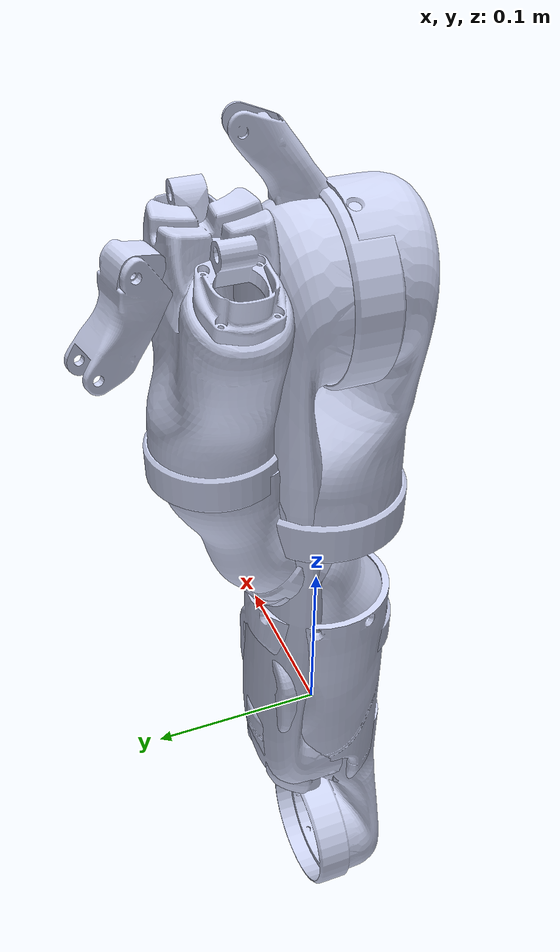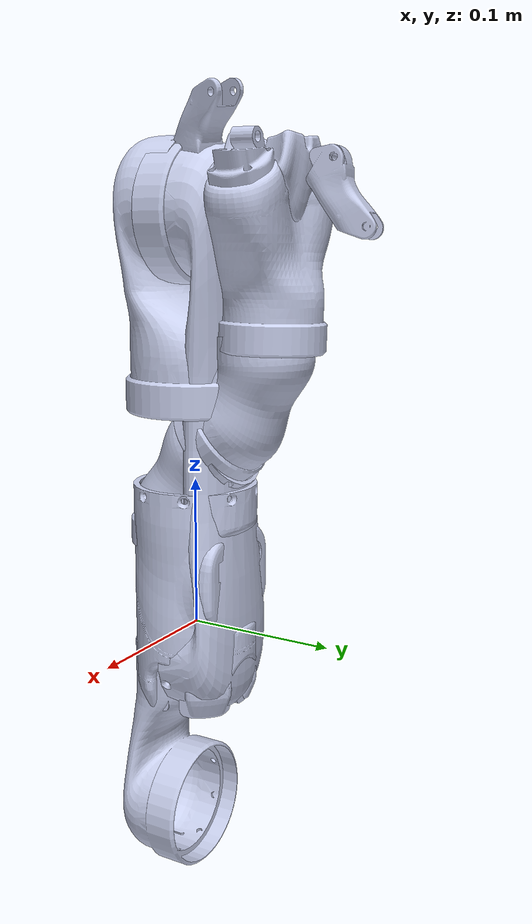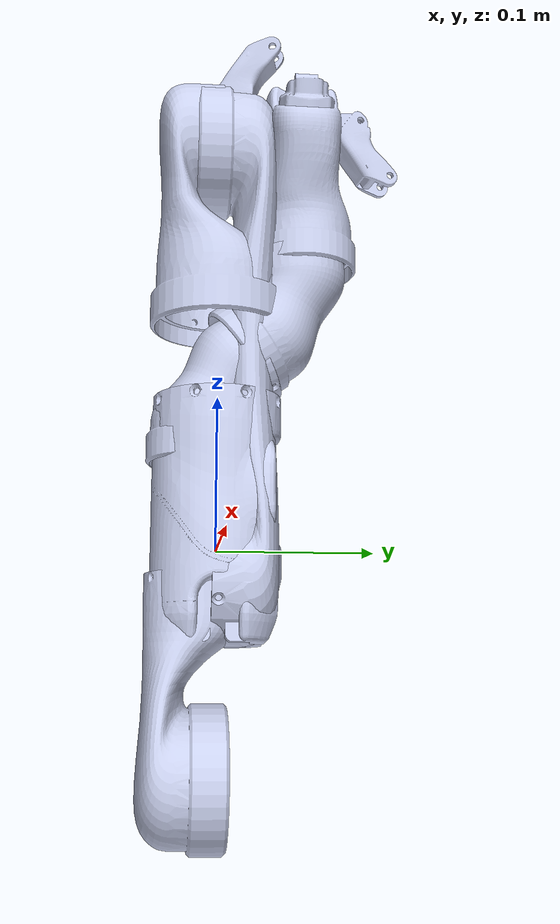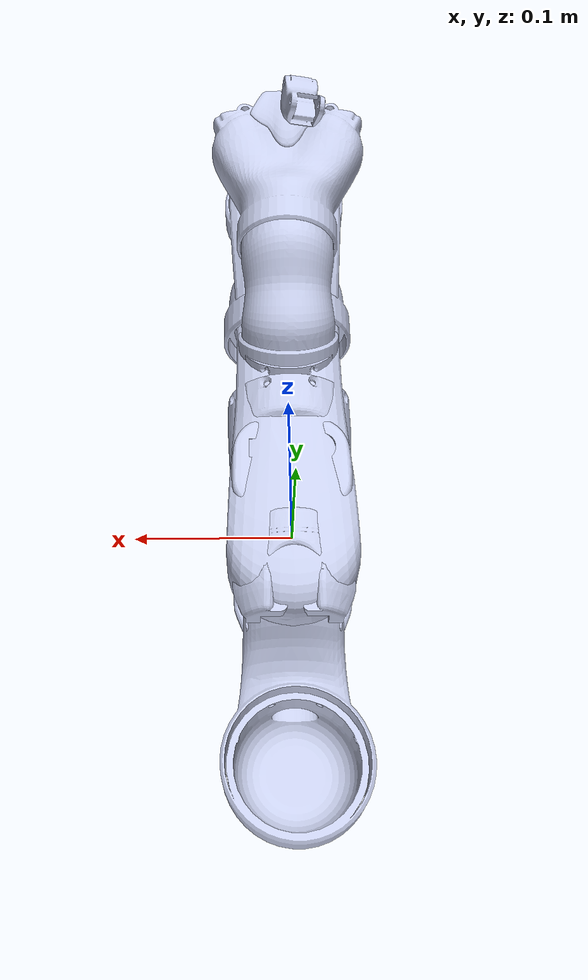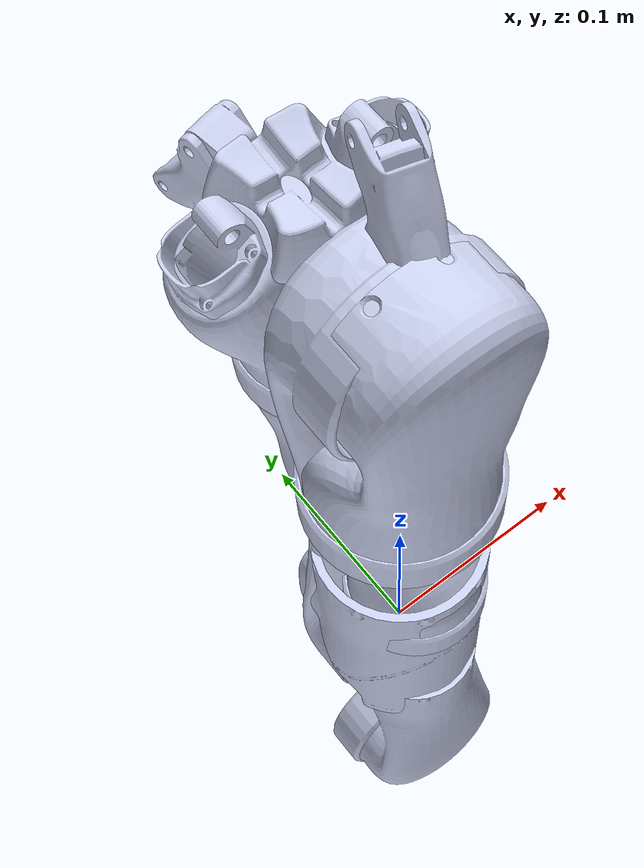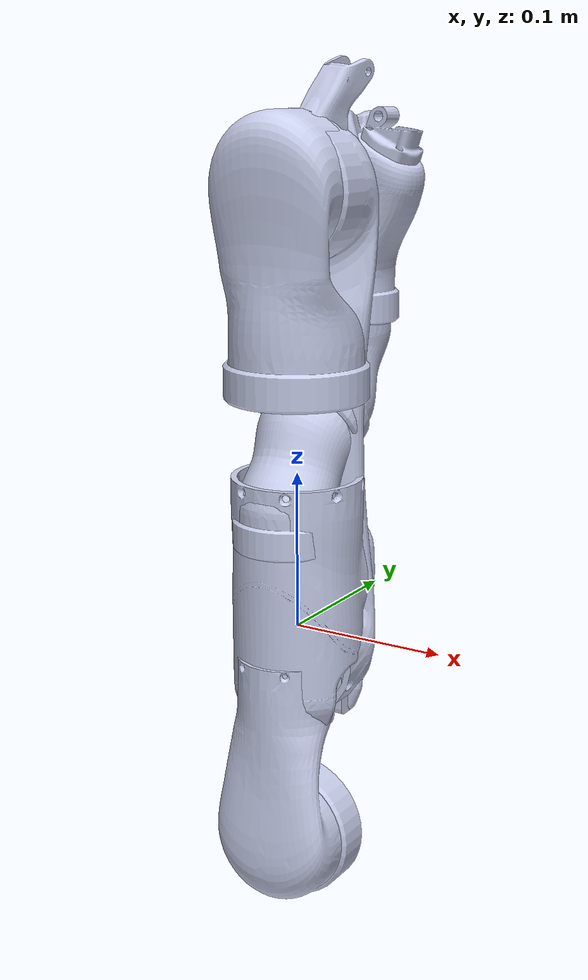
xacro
<?xml version="1.0"?>

<robot xmlns:xi="http://www.w3.org/2001/XInclude"
	xmlns:gazebo="http://playerstage.sourceforge.net/gazebo/xmlschema/#gz"
    xmlns:model="http://playerstage.sourceforge.net/gazebo/xmlschema/#model"
	xmlns:sensor="http://playerstage.sourceforge.net/gazebo/xmlschema/#sensor"
	xmlns:body="http://playerstage.sourceforge.net/gazebo/xmlschema/#body"
    xmlns:geom="http://playerstage.sourceforge.net/gazebo/xmlschema/#geom"
    xmlns:joint="http://playerstage.sourceforge.net/gazebo/xmlschema/#joint"
	xmlns:controller="http://playerstage.sourceforge.net/gazebo/xmlschema/#controller"
	xmlns:interface="http://playerstage.sourceforge.net/gazebo/xmlschema/#interface"
	xmlns:rendering="http://playerstage.sourceforge.net/gazebo/xmlschema/#rendering"
    xmlns:renderable="http://playerstage.sourceforge.net/gazebo/xmlschema/#renderable"
    xmlns:physics="http://playerstage.sourceforge.net/gazebo/xmlschema/#physics"
	xmlns:xacro="http://ros.org/wiki/xacro" name="mico">

  <xacro:include filename="$(find mico_simplified)/urdf/mico_arm.xacro" />

<link name="root">
      <visual>
	<origin xyz="0 0 0" rpy="0 0 0" />
	<geometry>
	  <box size = "0 0 0"/> <!--making it slightly bigger in x and z direction-->
	</geometry>
      </visual>
      <collision>
	<origin xyz="0 0 0" rpy="0 0 0" />
	<geometry>
	  <box size = "0 0 0"/> <!--making it slightly bigger in x and z direction-->
	</geometry>
      </collision>
    </link>

<xacro:mico_arm  parent="root"/>

</robot>

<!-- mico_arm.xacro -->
<root xmlns:xi="http://www.w3.org/2001/XInclude"
xmlns:gazebo="http://playerstage.sourceforge.net/gazebo/xmlschema/#gz"
xmlns:model="http://playerstage.sourceforge.net/gazebo/xmlschema/#model"
xmlns:sensor="http://playerstage.sourceforge.net/gazebo/xmlschema/#sensor"
xmlns:body="http://playerstage.sourceforge.net/gazebo/xmlschema/#body"
xmlns:geom="http://playerstage.sourceforge.net/gazebo/xmlschema/#geom"
xmlns:joint="http://playerstage.sourceforge.net/gazebo/xmlschema/#joint"
xmlns:controller="http://playerstage.sourceforge.net/gazebo/xmlschema/#controller"
xmlns:interface="http://playerstage.sourceforge.net/gazebo/xmlschema/#interface"
xmlns:rendering="http://playerstage.sourceforge.net/gazebo/xmlschema/#rendering"
xmlns:renderable="http://playerstage.sourceforge.net/gazebo/xmlschema/#renderable"
xmlns:physics="http://playerstage.sourceforge.net/gazebo/xmlschema/#physics"
xmlns:xacro="http://ros.org/wiki/xacro">

<property name="J_PI" value="3.1415926535897931"/>
<property name="link_base" value="mico_link_base"/>
<property name="link_1" value="mico_link_1"/>
<property name="link_2" value="mico_link_2"/>
<property name="link_3" value="mico_link_3"/>
<property name="link_4" value="mico_link_4"/>
<property name="link_5" value="mico_link_5"/>
<property name="link_hand" value="mico_link_hand"/>
<property name="link_finger_1" value="mico_link_finger_1"/>
<property name="link_finger_2" value="mico_link_finger_2"/>

<property name="joint_base" value="mico_joint_base"/>
<property name="joint_base_axis_xyz" value="0 0 0"/>
<property name="joint_base_origin_xyz" value="0 0 0"/>
<property name="joint_base_origin_rpy" value="0 0 0"/>

<property name="joint_1" value="mico_joint_1"/>
<property name="joint_1_axis_xyz" value="0 0 1"/>
<property name="joint_1_origin_xyz" value="0 0 0.1535"/>
<property name="joint_1_origin_rpy" value="${J_PI} 0 0"/>

<property name="joint_2" value="mico_joint_2"/>
<property name="joint_2_axis_xyz" value="0 0 1"/>
<property name="joint_2_origin_xyz" value="0 0 -0.1185"/>
<property name="joint_2_origin_rpy" value="-${J_PI/2} -${J_PI/2} 0"/>

<property name="joint_3" value="mico_joint_3"/>
<property name="joint_3_axis_xyz" value="0 0 1"/>
<property name="joint_3_origin_xyz" value="0.41 0 0"/>
<property name="joint_3_origin_rpy" value="${J_PI} 0 ${J_PI}"/>

<property name="joint_4" value="mico_joint_4"/>
<property name="joint_4_axis_xyz" value="0 0 1"/>
<property name="joint_4_origin_xyz" value="0.207 0 -0.01125"/>
<property name="joint_4_origin_rpy" value="0 -${J_PI/2} 0"/>

<property name="joint_5" value="mico_joint_5"/>
<property name="joint_5_axis_xyz" value="0 0 1"/>
<property name="joint_5_origin_xyz" value="0.0343 0 -0.06588"/>
<property name="joint_5_origin_rpy" value="0 ${J_PI/180*55} ${J_PI}"/>

<property name="joint_6" value="mico_joint_6"/>
<property name="joint_6_axis_xyz" value="0 0 1"/>
<property name="joint_6_origin_xyz" value="0.0343 0 -0.06588"/>
<property name="joint_6_origin_rpy" value="0 ${J_PI/180*55} ${J_PI}"/>

<property name="joint_finger_1" value="mico_joint_finger_1"/>
<property name="joint_finger_1_axis_xyz" value="0 0 1"/>
<property name="joint_finger_1_origin_xyz" value="-0.03978 0 -0.10071"/>
<property name="joint_finger_1_origin_rpy" value="-1.7983 1.117 3.1416"/>
<property name="joint_finger_1_lower_limit" value="0"/>
<property name="joint_finger_1_upper_limit" value="${J_PI/180*40}"/>

<property name="joint_finger_2" value="mico_joint_finger_2"/>
<property name="joint_finger_2_axis_xyz" value="0 0 1"/>
<property name="joint_finger_2_origin_xyz" value="0.03569 -0.0216 -0.10071"/>
<property name="joint_finger_2_origin_rpy" value="-1.6222 1.117 -0.23615"/>
<property name="joint_finger_2_lower_limit" value="0"/>
<property name="joint_finger_2_upper_limit" value="${J_PI/180*40}"/>

<xacro:macro name="mico_link" params="link_name">
  <link name="${link_name}">
    <visual>
      <geometry>
        <mesh filename="package://mico_simplified/meshes/${link_name}.dae"/>
      </geometry>
      <material name="carbon_fiber">
        <color rgba="0.792156862745098 0.819607843137255 0.933333333333333 1"/>
      </material>
    </visual>
    <collision>
      <geometry>
        <mesh filename="package://mico_simplified/meshes/${link_name}.dae"/>
      </geometry>
    </collision>
  </link>
</xacro:macro>
<xacro:macro name="mico_joint" params="joint_name type parent child joint_axis_xyz joint_origin_xyz joint_origin_rpy">
  <joint name="${joint_name}" type="${type}">
    <parent link="${parent}"/>
    <child link="${child}"/>
    <axis xyz="${joint_axis_xyz}"/>
    <origin xyz="${joint_origin_xyz}" rpy="${joint_origin_rpy}"/>
  </joint>
</xacro:macro>
<xacro:macro name="mico_finger_joint" params="joint_name type parent child joint_axis_xyz joint_origin_xyz joint_origin_rpy lower_limit upper_limit">
  <joint name="${joint_name}" type="${type}">
    <parent link="${parent}"/>
    <child link="${child}"/>
    <axis xyz="${joint_axis_xyz}"/>
    <origin xyz="${joint_origin_xyz}" rpy="${joint_origin_rpy}"/>
    <limit lower="${lower_limit}" upper="${upper_limit}" effort="30" velocity="5"/>
  </joint>
</xacro:macro>

<xacro:macro name="mico_arm" params="parent">

<xacro:mico_link link_name="${link_base}"/>
<xacro:mico_joint joint_name="${joint_base}" type="fixed" parent="${parent}" child="${link_base}" joint_axis_xyz="${joint_base_axis_xyz}" joint_origin_xyz="${joint_base_origin_xyz}" joint_origin_rpy="${joint_base_origin_rpy}"/>
<xacro:mico_link link_name="${link_1}"/>
<xacro:mico_joint joint_name="${joint_1}" type="continuous" parent="${link_base}" child="${link_1}" joint_axis_xyz="${joint_1_axis_xyz}" joint_origin_xyz="${joint_1_origin_xyz}" joint_origin_rpy="${joint_1_origin_rpy}"/>
<xacro:mico_link link_name="${link_2}"/>
<xacro:mico_joint joint_name="${joint_2}" type="continuous" parent="${link_1}" child="${link_2}" joint_axis_xyz="${joint_2_axis_xyz}" joint_origin_xyz="${joint_2_origin_xyz}" joint_origin_rpy="${joint_2_origin_rpy}"/>
<xacro:mico_link link_name="${link_3}"/>
<xacro:mico_joint joint_name="${joint_3}" type="continuous" parent="${link_2}" child="${link_3}" joint_axis_xyz="${joint_3_axis_xyz}" joint_origin_xyz="${joint_3_origin_xyz}" joint_origin_rpy="${joint_3_origin_rpy}"/>
<xacro:mico_link link_name="${link_4}"/>
<xacro:mico_joint joint_name="${joint_4}" type="continuous" parent="${link_3}" child="${link_4}" joint_axis_xyz="${joint_4_axis_xyz}" joint_origin_xyz="${joint_4_origin_xyz}" joint_origin_rpy="${joint_4_origin_rpy}"/>
<xacro:mico_link link_name="${link_5}"/>

<xacro:mico_joint joint_name="${joint_5}" type="continuous" parent="${link_4}" child="${link_5}" joint_axis_xyz="${joint_5_axis_xyz}" joint_origin_xyz="${joint_5_origin_xyz}" joint_origin_rpy="${joint_5_origin_rpy}"/>
<xacro:mico_link link_name="${link_hand}"/>
<xacro:mico_joint joint_name="${joint_6}" type="continuous" parent="${link_5}" child="${link_hand}" joint_axis_xyz="${joint_6_axis_xyz}" joint_origin_xyz="${joint_6_origin_xyz}" joint_origin_rpy="${joint_6_origin_rpy}"/>

<xacro:mico_link link_name="${link_finger_1}"/>
<xacro:mico_finger_joint joint_name="${joint_finger_1}" type="revolute" parent="${link_hand}" child="${link_finger_1}" joint_axis_xyz="${joint_finger_1_axis_xyz}" joint_origin_xyz="${joint_finger_1_origin_xyz}" joint_origin_rpy="${joint_finger_1_origin_rpy}" lower_limit="${joint_finger_1_lower_limit}" upper_limit="${joint_finger_1_upper_limit}"/>
<xacro:mico_link link_name="${link_finger_2}"/>
<xacro:mico_finger_joint joint_name="${joint_finger_2}" type="revolute" parent="${link_hand}" child="${link_finger_2}" joint_axis_xyz="${joint_finger_2_axis_xyz}" joint_origin_xyz="${joint_finger_2_origin_xyz}" joint_origin_rpy="${joint_finger_2_origin_rpy}" lower_limit="${joint_finger_2_lower_limit}" upper_limit="${joint_finger_2_upper_limit}"/>

</xacro:macro>
</root>
